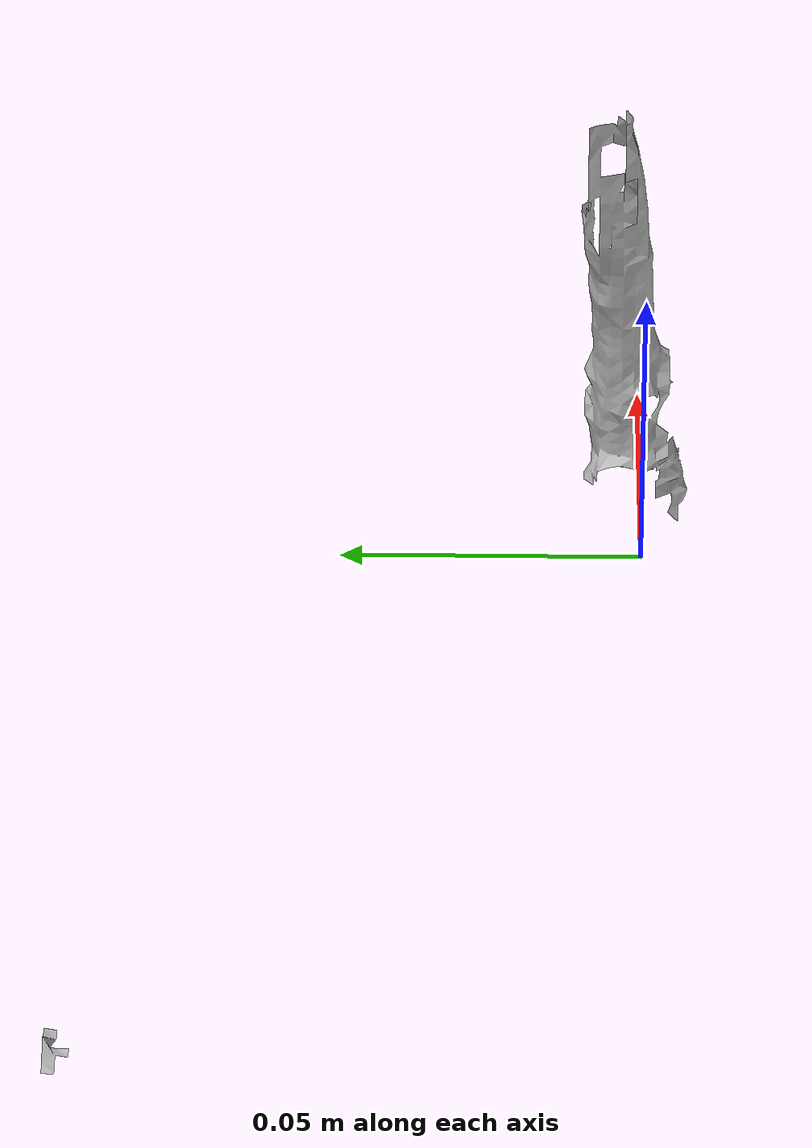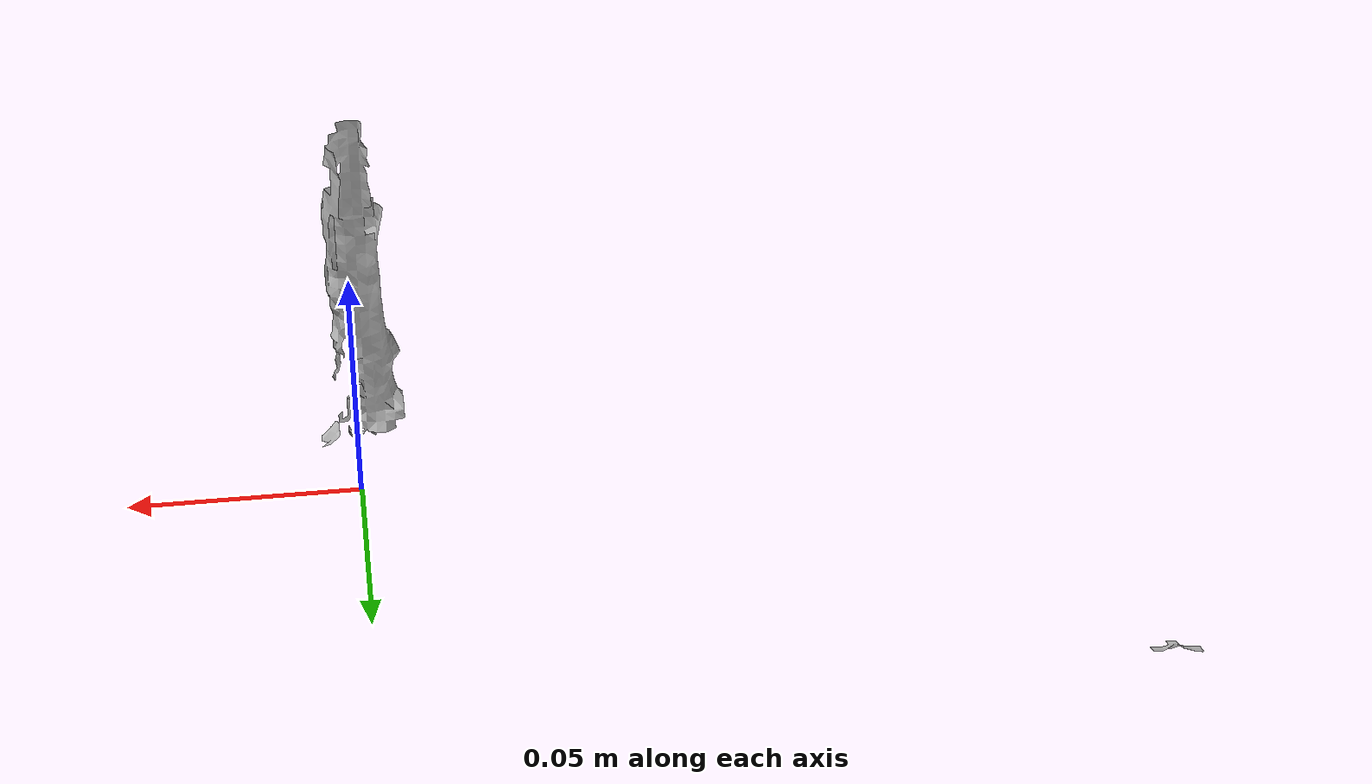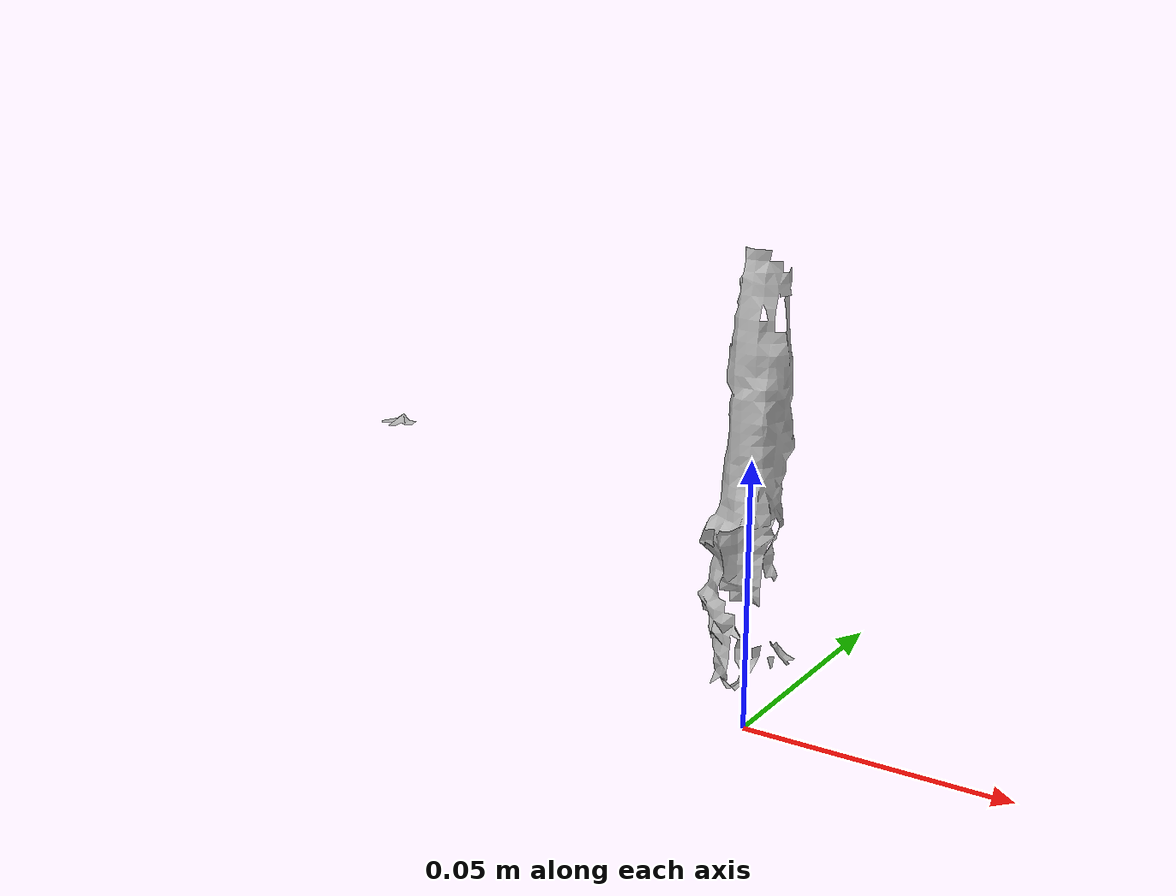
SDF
<?xml version='1.0'?>
<sdf version="1.4">
  <model name="quaker_chewy_low_fat_chocolate_chunk">
    <static>false</static>
    <link name="link">
      <inertial>
        <pose>0.01214034802293339 0.0022901427494382734 0.08479257320037943 -3.130964782837075 -0.04282286367825997 -2.374387564098205</pose>
        <mass>0.11747849460370578</mass>
        <inertia>
          <ixx>0.00047347649704630176</ixx>
          <ixy>8.754157848433264e-20</ixy>
          <ixz>-1.0163734347903486e-21</ixz>
          <iyy>0.0002793074993766102</iyy>
          <iyz>3.662681828873397e-21</iyz>
          <izz>0.00023885037438419688</izz>
        </inertia>
      </inertial>
      <collision name="collision">
        <geometry>
          <mesh>
            <!-- Use a downsampled mesh for collisions -->
            <uri>model:///quaker_chewy_low_fat_chocolate_chunk/quaker_chewy_low_fat_chocolate_chunk_250_collision.obj</uri>
	        </mesh>
        </geometry>
        <surface>
      </surface>
      </collision>
      <visual name="visual">
        <geometry>
          <mesh>
            <uri>model:///quaker_chewy_low_fat_chocolate_chunk/optimized_tsdf_texture_mapped_mesh.obj</uri>
	        </mesh>
        </geometry>
        <material>
          <script>
            <uri>model:///quaker_chewy_low_fat_chocolate_chunk/quaker_chewy_low_fat_chocolate_chunk.material</uri>
            <name>quaker_chewy_low_fat_chocolate_chunk</name>
          </script>
        </material>
      </visual>
    </link>
  </model>
</sdf>
